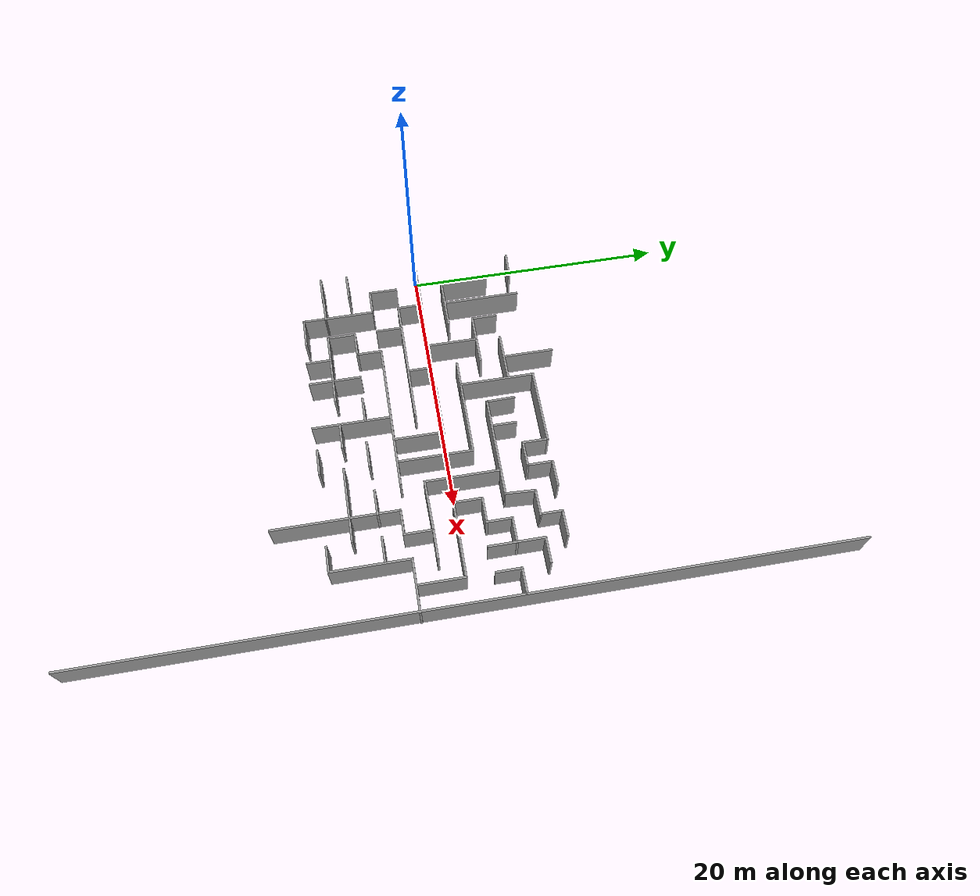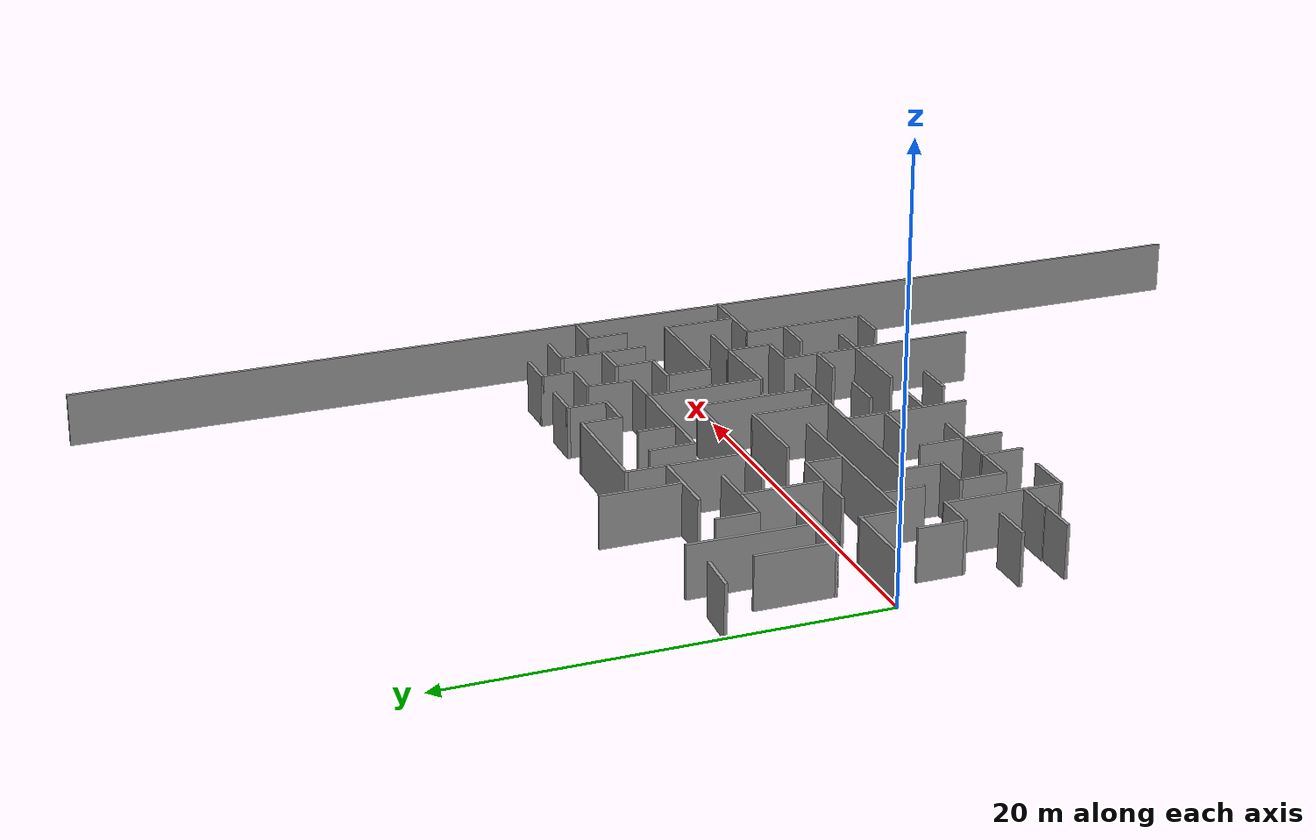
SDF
<sdf version="1.7">
 <model name="maze4">
  <pose>-0.019787 0.082438 0 0 -0 0</pose>
  <link name="Wall_1">
   <collision name="Wall_1_Collision">
    <geometry><box><size>56.75 0.15 2.5</size></box></geometry>
    <pose>0 0 1.25 0 -0 0</pose>
   </collision>
   <visual name="Wall_1_Visual">
    <pose>0 0 1.25 0 -0 0</pose>
    <geometry><box><size>56.75 0.15 2.5</size></box></geometry>
    <material>
     <script><uri>file://media/materials/scripts/gazebo.material</uri><name>Gazebo/Grey</name></script>
     <ambient>1 1 1 1</ambient>
    </material>
    <meta><layer>0</layer></meta>
   </visual>
   <pose>28.2783 0.019671 0 0 -0 -1.5708</pose>
  </link>
  <link name="Wall_287">
   <collision name="Wall_287_Collision">
    <geometry><box><size>2 0.15 2.5</size></box></geometry>
    <pose>0 0 1.25 0 -0 0</pose>
   </collision>
   <visual name="Wall_287_Visual">
    <pose>0 0 1.25 0 -0 0</pose>
    <geometry><box><size>2 0.15 2.5</size></box></geometry>
    <material>
     <script><uri>file://media/materials/scripts/gazebo.material</uri><name>Gazebo/Grey</name></script>
     <ambient>1 1 1 1</ambient>
    </material>
    <meta><layer>0</layer></meta>
   </visual>
   <pose>0.958409 -5.65223 0 0 -0 0</pose>
  </link>
  <link name="Wall_299">
   <collision name="Wall_299_Collision">
    <geometry><box><size>2 0.15 2.5</size></box></geometry>
    <pose>0 0 1.25 0 -0 0</pose>
   </collision>
   <visual name="Wall_299_Visual">
    <pose>0 0 1.25 0 -0 0</pose>
    <geometry><box><size>2 0.15 2.5</size></box></geometry>
    <material>
     <script><uri>file://media/materials/scripts/gazebo.material</uri><name>Gazebo/Grey</name></script>
     <ambient>1 1 1 1</ambient>
    </material>
    <meta><layer>0</layer></meta>
   </visual>
   <pose>0.929166 -7.7295 0 0 -0 3.14159</pose>
  </link>
  <link name="Wall_301">
   <collision name="Wall_301_Collision">
    <geometry><box><size>2 0.15 2.5</size></box></geometry>
    <pose>0 0 1.25 0 -0 0</pose>
   </collision>
   <visual name="Wall_301_Visual">
    <pose>0 0 1.25 0 -0 0</pose>
    <geometry><box><size>2 0.15 2.5</size></box></geometry>
    <material>
     <script><uri>file://media/materials/scripts/gazebo.material</uri><name>Gazebo/Grey</name></script>
     <ambient>1 1 1 1</ambient>
    </material>
    <meta><layer>0</layer></meta>
   </visual>
   <pose>2.80371 -7.68079 0 0 -0 0</pose>
  </link>
  <link name="Wall_302">
   <collision name="Wall_302_Collision">
    <geometry><box><size>3.87206 0.15 2.5</size></box></geometry>
    <pose>0 0 1.25 0 -0 0</pose>
   </collision>
   <visual name="Wall_302_Visual">
    <pose>0 0 1.25 0 -0 0</pose>
    <geometry><box><size>3.87206 0.15 2.5</size></box></geometry>
    <material>
     <script><uri>file://media/materials/scripts/gazebo.material</uri><name>Gazebo/Grey</name></script>
     <ambient>1 1 1 1</ambient>
    </material>
    <meta><layer>0</layer></meta>
   </visual>
   <pose>3.72576 -5.81977 0 0 -0 1.57238</pose>
  </link>
  <link name="Wall_303">
   <collision name="Wall_303_Collision">
    <geometry><box><size>2 0.15 2.5</size></box></geometry>
    <pose>0 0 1.25 0 -0 0</pose>
   </collision>
   <visual name="Wall_303_Visual">
    <pose>0 0 1.25 0 -0 0</pose>
    <geometry><box><size>2 0.15 2.5</size></box></geometry>
    <material>
     <script><uri>file://media/materials/scripts/gazebo.material</uri><name>Gazebo/Grey</name></script>
     <ambient>1 1 1 1</ambient>
    </material>
    <meta><layer>0</layer></meta>
   </visual>
   <pose>2.79782 -3.95874 0 0 -0 3.14159</pose>
  </link>
  <link name="Wall_304">
   <collision name="Wall_304_Collision">
    <geometry><box><size>2.25 0.15 2.5</size></box></geometry>
    <pose>0 0 1.25 0 -0 0</pose>
   </collision>
   <visual name="Wall_304_Visual">
    <pose>0 0 1.25 0 -0 0</pose>
    <geometry><box><size>2.25 0.15 2.5</size></box></geometry>
    <material>
     <script><uri>file://media/materials/scripts/gazebo.material</uri><name>Gazebo/Grey</name></script>
     <ambient>1 1 1 1</ambient>
    </material>
    <meta><layer>0</layer></meta>
   </visual>
   <pose>1.87282 -2.90874 0 0 -0 1.5708</pose>
  </link>
  <link name="Wall_306">
   <collision name="Wall_306_Collision">
    <geometry><box><size>1.87795 0.15 2.5</size></box></geometry>
    <pose>0 0 1.25 0 -0 0</pose>
   </collision>
   <visual name="Wall_306_Visual">
    <pose>0 0 1.25 0 -0 0</pose>
    <geometry><box><size>1.87795 0.15 2.5</size></box></geometry>
    <material>
     <script><uri>file://media/materials/scripts/gazebo.material</uri><name>Gazebo/Grey</name></script>
     <ambient>1 1 1 1</ambient>
    </material>
    <meta><layer>0</layer></meta>
   </visual>
   <pose>3.72576 -8.54476 0 0 -0 -1.5742</pose>
  </link>
  <link name="Wall_307">
   <collision name="Wall_307_Collision">
    <geometry><box><size>2.25 0.15 2.5</size></box></geometry>
    <pose>0 0 1.25 0 -0 0</pose>
   </collision>
   <visual name="Wall_307_Visual">
    <pose>0 0 1.25 0 -0 0</pose>
    <geometry><box><size>2.25 0.15 2.5</size></box></geometry>
    <material>
     <script><uri>file://media/materials/scripts/gazebo.material</uri><name>Gazebo/Grey</name></script>
     <ambient>1 1 1 1</ambient>
    </material>
    <meta><layer>0</layer></meta>
   </visual>
   <pose>4.77282 -9.40874 0 0 -0 0</pose>
  </link>
  <link name="Wall_385">
   <collision name="Wall_385_Collision">
    <geometry><box><size>2 0.15 2.5</size></box></geometry>
    <pose>0 0 1.25 0 -0 0</pose>
   </collision>
   <visual name="Wall_385_Visual">
    <pose>0 0 1.25 0 -0 0</pose>
    <geometry><box><size>2 0.15 2.5</size></box></geometry>
    <material>
     <script><uri>file://media/materials/scripts/gazebo.material</uri><name>Gazebo/Grey</name></script>
     <ambient>1 1 1 1</ambient>
    </material>
    <meta><layer>0</layer></meta>
   </visual>
   <pose>15.9853 -5.76384 0 0 -0 3.14159</pose>
  </link>
  <link name="Wall_387">
   <collision name="Wall_387_Collision">
    <geometry><box><size>2 0.15 2.5</size></box></geometry>
    <pose>0 0 1.25 0 -0 0</pose>
   </collision>
   <visual name="Wall_387_Visual">
    <pose>0 0 1.25 0 -0 0</pose>
    <geometry><box><size>2 0.15 2.5</size></box></geometry>
    <material>
     <script><uri>file://media/materials/scripts/gazebo.material</uri><name>Gazebo/Grey</name></script>
     <ambient>1 1 1 1</ambient>
    </material>
    <meta><layer>0</layer></meta>
   </visual>
   <pose>16.0256 -9.44059 0 0 -0 0</pose>
  </link>
  <link name="Wall_433">
   <collision name="Wall_433_Collision">
    <geometry><box><size>2 0.15 2.5</size></box></geometry>
    <pose>0 0 1.25 0 -0 0</pose>
   </collision>
   <visual name="Wall_433_Visual">
    <pose>0 0 1.25 0 -0 0</pose>
    <geometry><box><size>2 0.15 2.5</size></box></geometry>
    <material>
     <script><uri>file://media/materials/scripts/gazebo.material</uri><name>Gazebo/Grey</name></script>
     <ambient>1 1 1 1</ambient>
    </material>
    <meta><layer>0</layer></meta>
   </visual>
   <pose>23.5585 -9.5089 0 0 -0 0</pose>
  </link>
  <link name="Wall_434">
   <collision name="Wall_434_Collision">
    <geometry><box><size>6 0.15 2.5</size></box></geometry>
    <pose>0 0 1.25 0 -0 0</pose>
   </collision>
   <visual name="Wall_434_Visual">
    <pose>0 0 1.25 0 -0 0</pose>
    <geometry><box><size>6 0.15 2.5</size></box></geometry>
    <material>
     <script><uri>file://media/materials/scripts/gazebo.material</uri><name>Gazebo/Grey</name></script>
     <ambient>1 1 1 1</ambient>
    </material>
    <meta><layer>0</layer></meta>
   </visual>
   <pose>24.4835 -6.5839 0 0 -0 1.5708</pose>
  </link>
  <link name="Wall_435">
   <collision name="Wall_435_Collision">
    <geometry><box><size>4 0.15 2.5</size></box></geometry>
    <pose>0 0 1.25 0 -0 0</pose>
   </collision>
   <visual name="Wall_435_Visual">
    <pose>0 0 1.25 0 -0 0</pose>
    <geometry><box><size>4 0.15 2.5</size></box></geometry>
    <material>
     <script><uri>file://media/materials/scripts/gazebo.material</uri><name>Gazebo/Grey</name></script>
     <ambient>1 1 1 1</ambient>
    </material>
    <meta><layer>0</layer></meta>
   </visual>
   <pose>26.4085 -3.6589 0 0 -0 0</pose>
  </link>
  <link name="Wall_437">
   <collision name="Wall_437_Collision">
    <geometry><box><size>2 0.15 2.5</size></box></geometry>
    <pose>0 0 1.25 0 -0 0</pose>
   </collision>
   <visual name="Wall_437_Visual">
    <pose>0 0 1.25 0 -0 0</pose>
    <geometry><box><size>2 0.15 2.5</size></box></geometry>
    <material>
     <script><uri>file://media/materials/scripts/gazebo.material</uri><name>Gazebo/Grey</name></script>
     <ambient>1 1 1 1</ambient>
    </material>
    <meta><layer>0</layer></meta>
   </visual>
   <pose>23.4649 -5.55717 0 0 -0 0</pose>
  </link>
  <link name="Wall_440">
   <collision name="Wall_440_Collision">
    <geometry><box><size>9.5 0.15 2.5</size></box></geometry>
    <pose>0 0 1.25 0 -0 0</pose>
   </collision>
   <visual name="Wall_440_Visual">
    <pose>0 0 1.25 0 -0 0</pose>
    <geometry><box><size>9.5 0.15 2.5</size></box></geometry>
    <material>
     <script><uri>file://media/materials/scripts/gazebo.material</uri><name>Gazebo/Grey</name></script>
     <ambient>1 1 1 1</ambient>
    </material>
    <meta><layer>0</layer></meta>
   </visual>
   <pose>20.7619 -8.67052 0 0 -0 1.5708</pose>
  </link>
  <link name="Wall_441">
   <collision name="Wall_441_Collision">
    <geometry><box><size>2 0.15 2.5</size></box></geometry>
    <pose>0 0 1.25 0 -0 0</pose>
   </collision>
   <visual name="Wall_441_Visual">
    <pose>0 0 1.25 0 -0 0</pose>
    <geometry><box><size>2 0.15 2.5</size></box></geometry>
    <material>
     <script><uri>file://media/materials/scripts/gazebo.material</uri><name>Gazebo/Grey</name></script>
     <ambient>1 1 1 1</ambient>
    </material>
    <meta><layer>0</layer></meta>
   </visual>
   <pose>21.6869 -3.99552 0 0 -0 0</pose>
  </link>
  <link name="Wall_442">
   <collision name="Wall_442_Collision">
    <geometry><box><size>2.25 0.15 2.5</size></box></geometry>
    <pose>0 0 1.25 0 -0 0</pose>
   </collision>
   <visual name="Wall_442_Visual">
    <pose>0 0 1.25 0 -0 0</pose>
    <geometry><box><size>2.25 0.15 2.5</size></box></geometry>
    <material>
     <script><uri>file://media/materials/scripts/gazebo.material</uri><name>Gazebo/Grey</name></script>
     <ambient>1 1 1 1</ambient>
    </material>
    <meta><layer>0</layer></meta>
   </visual>
   <pose>22.6119 -2.94552 0 0 -0 1.5708</pose>
  </link>
  <link name="Wall_443">
   <collision name="Wall_443_Collision">
    <geometry><box><size>3.90209 0.15 2.5</size></box></geometry>
    <pose>0 0 1.25 0 -0 0</pose>
   </collision>
   <visual name="Wall_443_Visual">
    <pose>0 0 1.25 0 -0 0</pose>
    <geometry><box><size>3.90209 0.15 2.5</size></box></geometry>
    <material>
     <script><uri>file://media/materials/scripts/gazebo.material</uri><name>Gazebo/Grey</name></script>
     <ambient>1 1 1 1</ambient>
    </material>
    <meta><layer>0</layer></meta>
   </visual>
   <pose>20.7364 -1.9385 0 0 -0 -3.11868</pose>
  </link>
  <link name="Wall_444">
   <collision name="Wall_444_Collision">
    <geometry><box><size>5.75 0.15 2.5</size></box></geometry>
    <pose>0 0 1.25 0 -0 0</pose>
   </collision>
   <visual name="Wall_444_Visual">
    <pose>0 0 1.25 0 -0 0</pose>
    <geometry><box><size>5.75 0.15 2.5</size></box></geometry>
    <material>
     <script><uri>file://media/materials/scripts/gazebo.material</uri><name>Gazebo/Grey</name></script>
     <ambient>1 1 1 1</ambient>
    </material>
    <meta><layer>0</layer></meta>
   </visual>
   <pose>18.8608 0.818517 0 0 -0 1.5708</pose>
  </link>
  <link name="Wall_445">
   <collision name="Wall_445_Collision">
    <geometry><box><size>2 0.15 2.5</size></box></geometry>
    <pose>0 0 1.25 0 -0 0</pose>
   </collision>
   <visual name="Wall_445_Visual">
    <pose>0 0 1.25 0 -0 0</pose>
    <geometry><box><size>2 0.15 2.5</size></box></geometry>
    <material>
     <script><uri>file://media/materials/scripts/gazebo.material</uri><name>Gazebo/Grey</name></script>
     <ambient>1 1 1 1</ambient>
    </material>
    <meta><layer>0</layer></meta>
   </visual>
   <pose>19.8263 3.61852 0 0 -0 0</pose>
  </link>
  <link name="Wall_446">
   <collision name="Wall_446_Collision">
    <geometry><box><size>2.33876 0.15 2.5</size></box></geometry>
    <pose>0 0 1.25 0 -0 0</pose>
   </collision>
   <visual name="Wall_446_Visual">
    <pose>0 0 1.25 0 -0 0</pose>
    <geometry><box><size>2.33876 0.15 2.5</size></box></geometry>
    <material>
     <script><uri>file://media/materials/scripts/gazebo.material</uri><name>Gazebo/Grey</name></script>
     <ambient>1 1 1 1</ambient>
    </material>
    <meta><layer>0</layer></meta>
   </visual>
   <pose>20.8066 4.7115 0 0 -0 1.52022</pose>
  </link>
  <link name="Wall_447">
   <collision name="Wall_447_Collision">
    <geometry><box><size>2 0.15 2.5</size></box></geometry>
    <pose>0 0 1.25 0 -0 0</pose>
   </collision>
   <visual name="Wall_447_Visual">
    <pose>0 0 1.25 0 -0 0</pose>
    <geometry><box><size>2 0.15 2.5</size></box></geometry>
    <material>
     <script><uri>file://media/materials/scripts/gazebo.material</uri><name>Gazebo/Grey</name></script>
     <ambient>1 1 1 1</ambient>
    </material>
    <meta><layer>0</layer></meta>
   </visual>
   <pose>21.7869 5.80448 0 0 -0 0</pose>
  </link>
  <link name="Wall_448">
   <collision name="Wall_448_Collision">
    <geometry><box><size>1.75 0.15 2.5</size></box></geometry>
    <pose>0 0 1.25 0 -0 0</pose>
   </collision>
   <visual name="Wall_448_Visual">
    <pose>0 0 1.25 0 -0 0</pose>
    <geometry><box><size>1.75 0.15 2.5</size></box></geometry>
    <material>
     <script><uri>file://media/materials/scripts/gazebo.material</uri><name>Gazebo/Grey</name></script>
     <ambient>1 1 1 1</ambient>
    </material>
    <meta><layer>0</layer></meta>
   </visual>
   <pose>22.7119 6.60448 0 0 -0 1.5708</pose>
  </link>
  <link name="Wall_449">
   <collision name="Wall_449_Collision">
    <geometry><box><size>2 0.15 2.5</size></box></geometry>
    <pose>0 0 1.25 0 -0 0</pose>
   </collision>
   <visual name="Wall_449_Visual">
    <pose>0 0 1.25 0 -0 0</pose>
    <geometry><box><size>2 0.15 2.5</size></box></geometry>
    <material>
     <script><uri>file://media/materials/scripts/gazebo.material</uri><name>Gazebo/Grey</name></script>
     <ambient>1 1 1 1</ambient>
    </material>
    <meta><layer>0</layer></meta>
   </visual>
   <pose>23.6369 7.40448 0 0 -0 0</pose>
  </link>
  <link name="Wall_455">
   <collision name="Wall_455_Collision">
    <geometry><box><size>5.75 0.15 2.5</size></box></geometry>
    <pose>0 0 1.25 0 -0 0</pose>
   </collision>
   <visual name="Wall_455_Visual">
    <pose>0 0 1.25 0 -0 0</pose>
    <geometry><box><size>5.75 0.15 2.5</size></box></geometry>
    <material>
     <script><uri>file://media/materials/scripts/gazebo.material</uri><name>Gazebo/Grey</name></script>
     <ambient>1 1 1 1</ambient>
    </material>
    <meta><layer>0</layer></meta>
   </visual>
   <pose>19.7253 -7.66264 0 0 -0 0</pose>
  </link>
  <link name="Wall_457">
   <collision name="Wall_457_Collision">
    <geometry><box><size>2 0.15 2.5</size></box></geometry>
    <pose>0 0 1.25 0 -0 0</pose>
   </collision>
   <visual name="Wall_457_Visual">
    <pose>0 0 1.25 0 -0 0</pose>
    <geometry><box><size>2 0.15 2.5</size></box></geometry>
    <material>
     <script><uri>file://media/materials/scripts/gazebo.material</uri><name>Gazebo/Grey</name></script>
     <ambient>1 1 1 1</ambient>
    </material>
    <meta><layer>0</layer></meta>
   </visual>
   <pose>19.8837 -5.65075 0 0 -0 3.14159</pose>
  </link>
  <link name="Wall_459">
   <collision name="Wall_459_Collision">
    <geometry><box><size>11.5 0.15 2.5</size></box></geometry>
    <pose>0 0 1.25 0 -0 0</pose>
   </collision>
   <visual name="Wall_459_Visual">
    <pose>0 0 1.25 0 -0 0</pose>
    <geometry><box><size>11.5 0.15 2.5</size></box></geometry>
    <material>
     <script><uri>file://media/materials/scripts/gazebo.material</uri><name>Gazebo/Grey</name></script>
     <ambient>1 1 1 1</ambient>
    </material>
    <meta><layer>0</layer></meta>
   </visual>
   <pose>13.0751 -3.73244 0 0 -0 3.14159</pose>
  </link>
  <link name="Wall_460">
   <collision name="Wall_460_Collision">
    <geometry><box><size>2 0.15 2.5</size></box></geometry>
    <pose>0 0 1.25 0 -0 0</pose>
   </collision>
   <visual name="Wall_460_Visual">
    <pose>0 0 1.25 0 -0 0</pose>
    <geometry><box><size>2 0.15 2.5</size></box></geometry>
    <material>
     <script><uri>file://media/materials/scripts/gazebo.material</uri><name>Gazebo/Grey</name></script>
     <ambient>1 1 1 1</ambient>
    </material>
    <meta><layer>0</layer></meta>
   </visual>
   <pose>7.40006 -4.65744 0 0 -0 -1.5708</pose>
  </link>
  <link name="Wall_461">
   <collision name="Wall_461_Collision">
    <geometry><box><size>2 0.15 2.5</size></box></geometry>
    <pose>0 0 1.25 0 -0 0</pose>
   </collision>
   <visual name="Wall_461_Visual">
    <pose>0 0 1.25 0 -0 0</pose>
    <geometry><box><size>2 0.15 2.5</size></box></geometry>
    <material>
     <script><uri>file://media/materials/scripts/gazebo.material</uri><name>Gazebo/Grey</name></script>
     <ambient>1 1 1 1</ambient>
    </material>
    <meta><layer>0</layer></meta>
   </visual>
   <pose>6.47506 -5.58244 0 0 -0 3.14159</pose>
  </link>
  <link name="Wall_462">
   <collision name="Wall_462_Collision">
    <geometry><box><size>2.25 0.15 2.5</size></box></geometry>
    <pose>0 0 1.25 0 -0 0</pose>
   </collision>
   <visual name="Wall_462_Visual">
    <pose>0 0 1.25 0 -0 0</pose>
    <geometry><box><size>2.25 0.15 2.5</size></box></geometry>
    <material>
     <script><uri>file://media/materials/scripts/gazebo.material</uri><name>Gazebo/Grey</name></script>
     <ambient>1 1 1 1</ambient>
    </material>
    <meta><layer>0</layer></meta>
   </visual>
   <pose>5.55006 -6.63244 0 0 -0 -1.5708</pose>
  </link>
  <link name="Wall_463">
   <collision name="Wall_463_Collision">
    <geometry><box><size>5.75 0.15 2.5</size></box></geometry>
    <pose>0 0 1.25 0 -0 0</pose>
   </collision>
   <visual name="Wall_463_Visual">
    <pose>0 0 1.25 0 -0 0</pose>
    <geometry><box><size>5.75 0.15 2.5</size></box></geometry>
    <material>
     <script><uri>file://media/materials/scripts/gazebo.material</uri><name>Gazebo/Grey</name></script>
     <ambient>1 1 1 1</ambient>
    </material>
    <meta><layer>0</layer></meta>
   </visual>
   <pose>8.35006 -7.68244 0 0 -0 0</pose>
  </link>
  <link name="Wall_465">
   <collision name="Wall_465_Collision">
    <geometry><box><size>4 0.15 2.5</size></box></geometry>
    <pose>0 0 1.25 0 -0 0</pose>
   </collision>
   <visual name="Wall_465_Visual">
    <pose>0 0 1.25 0 -0 0</pose>
    <geometry><box><size>4 0.15 2.5</size></box></geometry>
    <material>
     <script><uri>file://media/materials/scripts/gazebo.material</uri><name>Gazebo/Grey</name></script>
     <ambient>1 1 1 1</ambient>
    </material>
    <meta><layer>0</layer></meta>
   </visual>
   <pose>9.43923 -7.52896 0 0 -0 -1.5708</pose>
  </link>
  <link name="Wall_467">
   <collision name="Wall_467_Collision">
    <geometry><box><size>2 0.15 2.5</size></box></geometry>
    <pose>0 0 1.25 0 -0 0</pose>
   </collision>
   <visual name="Wall_467_Visual">
    <pose>0 0 1.25 0 -0 0</pose>
    <geometry><box><size>2 0.15 2.5</size></box></geometry>
    <material>
     <script><uri>file://media/materials/scripts/gazebo.material</uri><name>Gazebo/Grey</name></script>
     <ambient>1 1 1 1</ambient>
    </material>
    <meta><layer>0</layer></meta>
   </visual>
   <pose>7.5677 -8.58764 0 0 -0 -1.5708</pose>
  </link>
  <link name="Wall_469">
   <collision name="Wall_469_Collision">
    <geometry><box><size>6 0.15 2.5</size></box></geometry>
    <pose>0 0 1.25 0 -0 0</pose>
   </collision>
   <visual name="Wall_469_Visual">
    <pose>0 0 1.25 0 -0 0</pose>
    <geometry><box><size>6 0.15 2.5</size></box></geometry>
    <material>
     <script><uri>file://media/materials/scripts/gazebo.material</uri><name>Gazebo/Grey</name></script>
     <ambient>1 1 1 1</ambient>
    </material>
    <meta><layer>0</layer></meta>
   </visual>
   <pose>13.2291 -6.65744 0 0 -0 -1.5708</pose>
  </link>
  <link name="Wall_471">
   <collision name="Wall_471_Collision">
    <geometry><box><size>2 0.15 2.5</size></box></geometry>
    <pose>0 0 1.25 0 -0 0</pose>
   </collision>
   <visual name="Wall_471_Visual">
    <pose>0 0 1.25 0 -0 0</pose>
    <geometry><box><size>2 0.15 2.5</size></box></geometry>
    <material>
     <script><uri>file://media/materials/scripts/gazebo.material</uri><name>Gazebo/Grey</name></script>
     <ambient>1 1 1 1</ambient>
    </material>
    <meta><layer>0</layer></meta>
   </visual>
   <pose>12.2825 -5.65075 0 0 -0 0</pose>
  </link>
  <link name="Wall_473">
   <collision name="Wall_473_Collision">
    <geometry><box><size>2 0.15 2.5</size></box></geometry>
    <pose>0 0 1.25 0 -0 0</pose>
   </collision>
   <visual name="Wall_473_Visual">
    <pose>0 0 1.25 0 -0 0</pose>
    <geometry><box><size>2 0.15 2.5</size></box></geometry>
    <material>
     <script><uri>file://media/materials/scripts/gazebo.material</uri><name>Gazebo/Grey</name></script>
     <ambient>1 1 1 1</ambient>
    </material>
    <meta><layer>0</layer></meta>
   </visual>
   <pose>14.2009 -7.56906 0 0 -0 0</pose>
  </link>
  <link name="Wall_572">
   <collision name="Wall_572_Collision">
    <geometry><box><size>2 0.15 2.5</size></box></geometry>
    <pose>0 0 1.25 0 -0 0</pose>
   </collision>
   <visual name="Wall_572_Visual">
    <pose>0 0 1.25 0 -0 0</pose>
    <geometry><box><size>2 0.15 2.5</size></box></geometry>
    <material>
     <script><uri>file://media/materials/scripts/gazebo.material</uri><name>Gazebo/Grey</name></script>
     <ambient>1 1 1 1</ambient>
    </material>
    <meta><layer>0</layer></meta>
   </visual>
   <pose>25.4103 5.82275 0 0 -0 3.14159</pose>
  </link>
  <link name="Wall_573">
   <collision name="Wall_573_Collision">
    <geometry><box><size>4.25 0.15 2.5</size></box></geometry>
    <pose>0 0 1.25 0 -0 0</pose>
   </collision>
   <visual name="Wall_573_Visual">
    <pose>0 0 1.25 0 -0 0</pose>
    <geometry><box><size>4.25 0.15 2.5</size></box></geometry>
    <material>
     <script><uri>file://media/materials/scripts/gazebo.material</uri><name>Gazebo/Grey</name></script>
     <ambient>1 1 1 1</ambient>
    </material>
    <meta><layer>0</layer></meta>
   </visual>
   <pose>24.4853 3.77275 0 0 -0 -1.5708</pose>
  </link>
  <link name="Wall_575">
   <collision name="Wall_575_Collision">
    <geometry><box><size>2 0.15 2.5</size></box></geometry>
    <pose>0 0 1.25 0 -0 0</pose>
   </collision>
   <visual name="Wall_575_Visual">
    <pose>0 0 1.25 0 -0 0</pose>
    <geometry><box><size>2 0.15 2.5</size></box></geometry>
    <material>
     <script><uri>file://media/materials/scripts/gazebo.material</uri><name>Gazebo/Grey</name></script>
     <ambient>1 1 1 1</ambient>
    </material>
    <meta><layer>0</layer></meta>
   </visual>
   <pose>26.4162 2.84069 0 0 -0 1.5708</pose>
  </link>
  <link name="Wall_576">
   <collision name="Wall_576_Collision">
    <geometry><box><size>2 0.15 2.5</size></box></geometry>
    <pose>0 0 1.25 0 -0 0</pose>
   </collision>
   <visual name="Wall_576_Visual">
    <pose>0 0 1.25 0 -0 0</pose>
    <geometry><box><size>2 0.15 2.5</size></box></geometry>
    <material>
     <script><uri>file://media/materials/scripts/gazebo.material</uri><name>Gazebo/Grey</name></script>
     <ambient>1 1 1 1</ambient>
    </material>
    <meta><layer>0</layer></meta>
   </visual>
   <pose>27.3412 3.76569 0 0 -0 0</pose>
  </link>
  <link name="Wall_578">
   <collision name="Wall_578_Collision">
    <geometry><box><size>2 0.15 2.5</size></box></geometry>
    <pose>0 0 1.25 0 -0 0</pose>
   </collision>
   <visual name="Wall_578_Visual">
    <pose>0 0 1.25 0 -0 0</pose>
    <geometry><box><size>2 0.15 2.5</size></box></geometry>
    <material>
     <script><uri>file://media/materials/scripts/gazebo.material</uri><name>Gazebo/Grey</name></script>
     <ambient>1 1 1 1</ambient>
    </material>
    <meta><layer>0</layer></meta>
   </visual>
   <pose>23.5898 3.77665 0 0 -0 3.14159</pose>
  </link>
  <link name="Wall_579">
   <collision name="Wall_579_Collision">
    <geometry><box><size>2 0.15 2.5</size></box></geometry>
    <pose>0 0 1.25 0 -0 0</pose>
   </collision>
   <visual name="Wall_579_Visual">
    <pose>0 0 1.25 0 -0 0</pose>
    <geometry><box><size>2 0.15 2.5</size></box></geometry>
    <material>
     <script><uri>file://media/materials/scripts/gazebo.material</uri><name>Gazebo/Grey</name></script>
     <ambient>1 1 1 1</ambient>
    </material>
    <meta><layer>0</layer></meta>
   </visual>
   <pose>22.6648 2.85165 0 0 -0 -1.5708</pose>
  </link>
  <link name="Wall_580">
   <collision name="Wall_580_Collision">
    <geometry><box><size>2 0.15 2.5</size></box></geometry>
    <pose>0 0 1.25 0 -0 0</pose>
   </collision>
   <visual name="Wall_580_Visual">
    <pose>0 0 1.25 0 -0 0</pose>
    <geometry><box><size>2 0.15 2.5</size></box></geometry>
    <material>
     <script><uri>file://media/materials/scripts/gazebo.material</uri><name>Gazebo/Grey</name></script>
     <ambient>1 1 1 1</ambient>
    </material>
    <meta><layer>0</layer></meta>
   </visual>
   <pose>21.7398 1.92665 0 0 -0 3.14159</pose>
  </link>
  <link name="Wall_581">
   <collision name="Wall_581_Collision">
    <geometry><box><size>2.25 0.15 2.5</size></box></geometry>
    <pose>0 0 1.25 0 -0 0</pose>
   </collision>
   <visual name="Wall_581_Visual">
    <pose>0 0 1.25 0 -0 0</pose>
    <geometry><box><size>2.25 0.15 2.5</size></box></geometry>
    <material>
     <script><uri>file://media/materials/scripts/gazebo.material</uri><name>Gazebo/Grey</name></script>
     <ambient>1 1 1 1</ambient>
    </material>
    <meta><layer>0</layer></meta>
   </visual>
   <pose>20.8148 0.87665 0 0 -0 -1.5708</pose>
  </link>
  <link name="Wall_582">
   <collision name="Wall_582_Collision">
    <geometry><box><size>5.75 0.15 2.5</size></box></geometry>
    <pose>0 0 1.25 0 -0 0</pose>
   </collision>
   <visual name="Wall_582_Visual">
    <pose>0 0 1.25 0 -0 0</pose>
    <geometry><box><size>5.75 0.15 2.5</size></box></geometry>
    <material>
     <script><uri>file://media/materials/scripts/gazebo.material</uri><name>Gazebo/Grey</name></script>
     <ambient>1 1 1 1</ambient>
    </material>
    <meta><layer>0</layer></meta>
   </visual>
   <pose>23.6148 -0.17335 0 0 -0 0</pose>
  </link>
  <link name="Wall_583">
   <collision name="Wall_583_Collision">
    <geometry><box><size>3.5 0.15 2.5</size></box></geometry>
    <pose>0 0 1.25 0 -0 0</pose>
   </collision>
   <visual name="Wall_583_Visual">
    <pose>0 0 1.25 0 -0 0</pose>
    <geometry><box><size>3.5 0.15 2.5</size></box></geometry>
    <material>
     <script><uri>file://media/materials/scripts/gazebo.material</uri><name>Gazebo/Grey</name></script>
     <ambient>1 1 1 1</ambient>
    </material>
    <meta><layer>0</layer></meta>
   </visual>
   <pose>26.4148 -1.84835 0 0 -0 -1.5708</pose>
  </link>
  <link name="Wall_585">
   <collision name="Wall_585_Collision">
    <geometry><box><size>2.25 0.15 2.5</size></box></geometry>
    <pose>0 0 1.25 0 -0 0</pose>
   </collision>
   <visual name="Wall_585_Visual">
    <pose>0 0 1.25 0 -0 0</pose>
    <geometry><box><size>2.25 0.15 2.5</size></box></geometry>
    <material>
     <script><uri>file://media/materials/scripts/gazebo.material</uri><name>Gazebo/Grey</name></script>
     <ambient>1 1 1 1</ambient>
    </material>
    <meta><layer>0</layer></meta>
   </visual>
   <pose>23.6619 -1.89552 0 0 -0 0</pose>
  </link>
  <link name="Wall_596">
   <collision name="Wall_596_Collision">
    <geometry><box><size>2 0.15 2.5</size></box></geometry>
    <pose>0 0 1.25 0 -0 0</pose>
   </collision>
   <visual name="Wall_596_Visual">
    <pose>0 0 1.25 0 -0 0</pose>
    <geometry><box><size>2 0.15 2.5</size></box></geometry>
    <material>
     <script><uri>file://media/materials/scripts/gazebo.material</uri><name>Gazebo/Grey</name></script>
     <ambient>1 1 1 1</ambient>
    </material>
    <meta><layer>0</layer></meta>
   </visual>
   <pose>19.7355 7.49184 0 0 -0 0</pose>
  </link>
  <link name="Wall_598">
   <collision name="Wall_598_Collision">
    <geometry><box><size>2 0.15 2.5</size></box></geometry>
    <pose>0 0 1.25 0 -0 0</pose>
   </collision>
   <visual name="Wall_598_Visual">
    <pose>0 0 1.25 0 -0 0</pose>
    <geometry><box><size>2 0.15 2.5</size></box></geometry>
    <material>
     <script><uri>file://media/materials/scripts/gazebo.material</uri><name>Gazebo/Grey</name></script>
     <ambient>1 1 1 1</ambient>
    </material>
    <meta><layer>0</layer></meta>
   </visual>
   <pose>18.8105 6.56684 0 0 -0 -1.5708</pose>
  </link>
  <link name="Wall_599">
   <collision name="Wall_599_Collision">
    <geometry><box><size>2 0.15 2.5</size></box></geometry>
    <pose>0 0 1.25 0 -0 0</pose>
   </collision>
   <visual name="Wall_599_Visual">
    <pose>0 0 1.25 0 -0 0</pose>
    <geometry><box><size>2 0.15 2.5</size></box></geometry>
    <material>
     <script><uri>file://media/materials/scripts/gazebo.material</uri><name>Gazebo/Grey</name></script>
     <ambient>1 1 1 1</ambient>
    </material>
    <meta><layer>0</layer></meta>
   </visual>
   <pose>17.8855 5.64184 0 0 -0 3.14159</pose>
  </link>
  <link name="Wall_600">
   <collision name="Wall_600_Collision">
    <geometry><box><size>2 0.15 2.5</size></box></geometry>
    <pose>0 0 1.25 0 -0 0</pose>
   </collision>
   <visual name="Wall_600_Visual">
    <pose>0 0 1.25 0 -0 0</pose>
    <geometry><box><size>2 0.15 2.5</size></box></geometry>
    <material>
     <script><uri>file://media/materials/scripts/gazebo.material</uri><name>Gazebo/Grey</name></script>
     <ambient>1 1 1 1</ambient>
    </material>
    <meta><layer>0</layer></meta>
   </visual>
   <pose>16.9605 6.56684 0 0 -0 1.5708</pose>
  </link>
  <link name="Wall_601">
   <collision name="Wall_601_Collision">
    <geometry><box><size>5.75 0.15 2.5</size></box></geometry>
    <pose>0 0 1.25 0 -0 0</pose>
   </collision>
   <visual name="Wall_601_Visual">
    <pose>0 0 1.25 0 -0 0</pose>
    <geometry><box><size>5.75 0.15 2.5</size></box></geometry>
    <material>
     <script><uri>file://media/materials/scripts/gazebo.material</uri><name>Gazebo/Grey</name></script>
     <ambient>1 1 1 1</ambient>
    </material>
    <meta><layer>0</layer></meta>
   </visual>
   <pose>14.1605 7.49184 0 0 -0 3.14159</pose>
  </link>
  <link name="Wall_602">
   <collision name="Wall_602_Collision">
    <geometry><box><size>5.75 0.15 2.5</size></box></geometry>
    <pose>0 0 1.25 0 -0 0</pose>
   </collision>
   <visual name="Wall_602_Visual">
    <pose>0 0 1.25 0 -0 0</pose>
    <geometry><box><size>5.75 0.15 2.5</size></box></geometry>
    <material>
     <script><uri>file://media/materials/scripts/gazebo.material</uri><name>Gazebo/Grey</name></script>
     <ambient>1 1 1 1</ambient>
    </material>
    <meta><layer>0</layer></meta>
   </visual>
   <pose>11.3605 4.69184 0 0 -0 -1.5708</pose>
  </link>
  <link name="Wall_603">
   <collision name="Wall_603_Collision">
    <geometry><box><size>2 0.15 2.5</size></box></geometry>
    <pose>0 0 1.25 0 -0 0</pose>
   </collision>
   <visual name="Wall_603_Visual">
    <pose>0 0 1.25 0 -0 0</pose>
    <geometry><box><size>2 0.15 2.5</size></box></geometry>
    <material>
     <script><uri>file://media/materials/scripts/gazebo.material</uri><name>Gazebo/Grey</name></script>
     <ambient>1 1 1 1</ambient>
    </material>
    <meta><layer>0</layer></meta>
   </visual>
   <pose>10.4355 1.89184 0 0 -0 3.14159</pose>
  </link>
  <link name="Wall_605">
   <collision name="Wall_605_Collision">
    <geometry><box><size>2.20994 0.15 2.5</size></box></geometry>
    <pose>0 0 1.25 0 -0 0</pose>
   </collision>
   <visual name="Wall_605_Visual">
    <pose>0 0 1.25 0 -0 0</pose>
    <geometry><box><size>2.20994 0.15 2.5</size></box></geometry>
    <material>
     <script><uri>file://media/materials/scripts/gazebo.material</uri><name>Gazebo/Grey</name></script>
     <ambient>1 1 1 1</ambient>
    </material>
    <meta><layer>0</layer></meta>
   </visual>
   <pose>13.1265 4.64829 0 0 -0 -1.55116</pose>
  </link>
  <link name="Wall_606">
   <collision name="Wall_606_Collision">
    <geometry><box><size>5.8641 0.15 2.5</size></box></geometry>
    <pose>0 0 1.25 0 -0 0</pose>
   </collision>
   <visual name="Wall_606_Visual">
    <pose>0 0 1.25 0 -0 0</pose>
    <geometry><box><size>5.8641 0.15 2.5</size></box></geometry>
    <material>
     <script><uri>file://media/materials/scripts/gazebo.material</uri><name>Gazebo/Grey</name></script>
     <ambient>1 1 1 1</ambient>
    </material>
    <meta><layer>0</layer></meta>
   </visual>
   <pose>16.0442 3.61852 0 0 -0 0</pose>
  </link>
  <link name="Wall_608">
   <collision name="Wall_608_Collision">
    <geometry><box><size>1.75 0.15 2.5</size></box></geometry>
    <pose>0 0 1.25 0 -0 0</pose>
   </collision>
   <visual name="Wall_608_Visual">
    <pose>0 0 1.25 0 -0 0</pose>
    <geometry><box><size>1.75 0.15 2.5</size></box></geometry>
    <material>
     <script><uri>file://media/materials/scripts/gazebo.material</uri><name>Gazebo/Grey</name></script>
     <ambient>1 1 1 1</ambient>
    </material>
    <meta><layer>0</layer></meta>
   </visual>
   <pose>15.21 4.6171 0 0 -0 1.5708</pose>
  </link>
  <link name="Wall_610">
   <collision name="Wall_610_Collision">
    <geometry><box><size>5.75 0.15 2.5</size></box></geometry>
    <pose>0 0 1.25 0 -0 0</pose>
   </collision>
   <visual name="Wall_610_Visual">
    <pose>0 0 1.25 0 -0 0</pose>
    <geometry><box><size>5.75 0.15 2.5</size></box></geometry>
    <material>
     <script><uri>file://media/materials/scripts/gazebo.material</uri><name>Gazebo/Grey</name></script>
     <ambient>1 1 1 1</ambient>
    </material>
    <meta><layer>0</layer></meta>
   </visual>
   <pose>14.1605 1.89184 0 0 -0 0</pose>
  </link>
  <link name="Wall_611">
   <collision name="Wall_611_Collision">
    <geometry><box><size>5.75 0.15 2.5</size></box></geometry>
    <pose>0 0 1.25 0 -0 0</pose>
   </collision>
   <visual name="Wall_611_Visual">
    <pose>0 0 1.25 0 -0 0</pose>
    <geometry><box><size>5.75 0.15 2.5</size></box></geometry>
    <material>
     <script><uri>file://media/materials/scripts/gazebo.material</uri><name>Gazebo/Grey</name></script>
     <ambient>1 1 1 1</ambient>
    </material>
    <meta><layer>0</layer></meta>
   </visual>
   <pose>16.9605 -0.908157 0 0 -0 -1.5708</pose>
  </link>
  <link name="Wall_613">
   <collision name="Wall_613_Collision">
    <geometry><box><size>3.75 0.15 2.5</size></box></geometry>
    <pose>0 0 1.25 0 -0 0</pose>
   </collision>
   <visual name="Wall_613_Visual">
    <pose>0 0 1.25 0 -0 0</pose>
    <geometry><box><size>3.75 0.15 2.5</size></box></geometry>
    <material>
     <script><uri>file://media/materials/scripts/gazebo.material</uri><name>Gazebo/Grey</name></script>
     <ambient>1 1 1 1</ambient>
    </material>
    <meta><layer>0</layer></meta>
   </visual>
   <pose>15.1291 -1.82672 0 0 -0 1.5708</pose>
  </link>
  <link name="Wall_614">
   <collision name="Wall_614_Collision">
    <geometry><box><size>4 0.15 2.5</size></box></geometry>
    <pose>0 0 1.25 0 -0 0</pose>
   </collision>
   <visual name="Wall_614_Visual">
    <pose>0 0 1.25 0 -0 0</pose>
    <geometry><box><size>4 0.15 2.5</size></box></geometry>
    <material>
     <script><uri>file://media/materials/scripts/gazebo.material</uri><name>Gazebo/Grey</name></script>
     <ambient>1 1 1 1</ambient>
    </material>
    <meta><layer>0</layer></meta>
   </visual>
   <pose>13.2041 -0.026721 0 0 -0 3.14159</pose>
  </link>
  <link name="Wall_616">
   <collision name="Wall_616_Collision">
    <geometry><box><size>9.75 0.15 2.5</size></box></geometry>
    <pose>0 0 1.25 0 -0 0</pose>
   </collision>
   <visual name="Wall_616_Visual">
    <pose>0 0 1.25 0 -0 0</pose>
    <geometry><box><size>9.75 0.15 2.5</size></box></geometry>
    <material>
     <script><uri>file://media/materials/scripts/gazebo.material</uri><name>Gazebo/Grey</name></script>
     <ambient>1 1 1 1</ambient>
    </material>
    <meta><layer>0</layer></meta>
   </visual>
   <pose>8.46811 -1.88713 0 0 -0 3.14159</pose>
  </link>
  <link name="Wall_617">
   <collision name="Wall_617_Collision">
    <geometry><box><size>2 0.15 2.5</size></box></geometry>
    <pose>0 0 1.25 0 -0 0</pose>
   </collision>
   <visual name="Wall_617_Visual">
    <pose>0 0 1.25 0 -0 0</pose>
    <geometry><box><size>2 0.15 2.5</size></box></geometry>
    <material>
     <script><uri>file://media/materials/scripts/gazebo.material</uri><name>Gazebo/Grey</name></script>
     <ambient>1 1 1 1</ambient>
    </material>
    <meta><layer>0</layer></meta>
   </visual>
   <pose>3.66811 -0.962131 0 0 -0 1.5708</pose>
  </link>
  <link name="Wall_618">
   <collision name="Wall_618_Collision">
    <geometry><box><size>3.75 0.15 2.5</size></box></geometry>
    <pose>0 0 1.25 0 -0 0</pose>
   </collision>
   <visual name="Wall_618_Visual">
    <pose>0 0 1.25 0 -0 0</pose>
    <geometry><box><size>3.75 0.15 2.5</size></box></geometry>
    <material>
     <script><uri>file://media/materials/scripts/gazebo.material</uri><name>Gazebo/Grey</name></script>
     <ambient>1 1 1 1</ambient>
    </material>
    <meta><layer>0</layer></meta>
   </visual>
   <pose>1.86811 -0.037131 0 0 -0 3.14159</pose>
  </link>
  <link name="Wall_620">
   <collision name="Wall_620_Collision">
    <geometry><box><size>2 0.15 2.5</size></box></geometry>
    <pose>0 0 1.25 0 -0 0</pose>
   </collision>
   <visual name="Wall_620_Visual">
    <pose>0 0 1.25 0 -0 0</pose>
    <geometry><box><size>2 0.15 2.5</size></box></geometry>
    <material>
     <script><uri>file://media/materials/scripts/gazebo.material</uri><name>Gazebo/Grey</name></script>
     <ambient>1 1 1 1</ambient>
    </material>
    <meta><layer>0</layer></meta>
   </visual>
   <pose>5.54109 -2.89304 0 0 -0 -1.5708</pose>
  </link>
  <link name="Wall_622">
   <collision name="Wall_622_Collision">
    <geometry><box><size>2 0.15 2.5</size></box></geometry>
    <pose>0 0 1.25 0 -0 0</pose>
   </collision>
   <visual name="Wall_622_Visual">
    <pose>0 0 1.25 0 -0 0</pose>
    <geometry><box><size>2 0.15 2.5</size></box></geometry>
    <material>
     <script><uri>file://media/materials/scripts/gazebo.material</uri><name>Gazebo/Grey</name></script>
     <ambient>1 1 1 1</ambient>
    </material>
    <meta><layer>0</layer></meta>
   </visual>
   <pose>5.622 4.67215 0 0 -0 -1.5708</pose>
  </link>
  <link name="Wall_623">
   <collision name="Wall_623_Collision">
    <geometry><box><size>4 0.15 2.5</size></box></geometry>
    <pose>0 0 1.25 0 -0 0</pose>
   </collision>
   <visual name="Wall_623_Visual">
    <pose>0 0 1.25 0 -0 0</pose>
    <geometry><box><size>4 0.15 2.5</size></box></geometry>
    <material>
     <script><uri>file://media/materials/scripts/gazebo.material</uri><name>Gazebo/Grey</name></script>
     <ambient>1 1 1 1</ambient>
    </material>
    <meta><layer>0</layer></meta>
   </visual>
   <pose>7.547 3.74715 0 0 -0 0</pose>
  </link>
  <link name="Wall_625">
   <collision name="Wall_625_Collision">
    <geometry><box><size>4 0.15 2.5</size></box></geometry>
    <pose>0 0 1.25 0 -0 0</pose>
   </collision>
   <visual name="Wall_625_Visual">
    <pose>0 0 1.25 0 -0 0</pose>
    <geometry><box><size>4 0.15 2.5</size></box></geometry>
    <material>
     <script><uri>file://media/materials/scripts/gazebo.material</uri><name>Gazebo/Grey</name></script>
     <ambient>1 1 1 1</ambient>
    </material>
    <meta><layer>0</layer></meta>
   </visual>
   <pose>7.52341 1.81119 0 0 -0 -1.5708</pose>
  </link>
  <link name="Wall_626">
   <collision name="Wall_626_Collision">
    <geometry><box><size>2.12891 0.15 2.5</size></box></geometry>
    <pose>0 0 1.25 0 -0 0</pose>
   </collision>
   <visual name="Wall_626_Visual">
    <pose>0 0 1.25 0 -0 0</pose>
    <geometry><box><size>2.12891 0.15 2.5</size></box></geometry>
    <material>
     <script><uri>file://media/materials/scripts/gazebo.material</uri><name>Gazebo/Grey</name></script>
     <ambient>1 1 1 1</ambient>
    </material>
    <meta><layer>0</layer></meta>
   </visual>
   <pose>8.51273 -0.1304 0 0 -0 -0.016772</pose>
  </link>
  <link name="Wall_627">
   <collision name="Wall_627_Collision">
    <geometry><box><size>1.75 0.15 2.5</size></box></geometry>
    <pose>0 0 1.25 0 -0 0</pose>
   </collision>
   <visual name="Wall_627_Visual">
    <pose>0 0 1.25 0 -0 0</pose>
    <geometry><box><size>1.75 0.15 2.5</size></box></geometry>
    <material>
     <script><uri>file://media/materials/scripts/gazebo.material</uri><name>Gazebo/Grey</name></script>
     <ambient>1 1 1 1</ambient>
    </material>
    <meta><layer>0</layer></meta>
   </visual>
   <pose>9.50205 -0.946995 0 0 -0 -1.5708</pose>
  </link>
  <link name="Wall_629">
   <collision name="Wall_629_Collision">
    <geometry><box><size>2 0.15 2.5</size></box></geometry>
    <pose>0 0 1.25 0 -0 0</pose>
   </collision>
   <visual name="Wall_629_Visual">
    <pose>0 0 1.25 0 -0 0</pose>
    <geometry><box><size>2 0.15 2.5</size></box></geometry>
    <material>
     <script><uri>file://media/materials/scripts/gazebo.material</uri><name>Gazebo/Grey</name></script>
     <ambient>1 1 1 1</ambient>
    </material>
    <meta><layer>0</layer></meta>
   </visual>
   <pose>6.59842 -0.113806 0 0 -0 3.14159</pose>
  </link>
  <link name="Wall_631">
   <collision name="Wall_631_Collision">
    <geometry><box><size>4 0.15 2.5</size></box></geometry>
    <pose>0 0 1.25 0 -0 0</pose>
   </collision>
   <visual name="Wall_631_Visual">
    <pose>0 0 1.25 0 -0 0</pose>
    <geometry><box><size>4 0.15 2.5</size></box></geometry>
    <material>
     <script><uri>file://media/materials/scripts/gazebo.material</uri><name>Gazebo/Grey</name></script>
     <ambient>1 1 1 1</ambient>
    </material>
    <meta><layer>0</layer></meta>
   </visual>
   <pose>3.81837 1.83478 0 0 -0 3.14159</pose>
  </link>
  <link name="Wall_632">
   <collision name="Wall_632_Collision">
    <geometry><box><size>3.75 0.15 2.5</size></box></geometry>
    <pose>0 0 1.25 0 -0 0</pose>
   </collision>
   <visual name="Wall_632_Visual">
    <pose>0 0 1.25 0 -0 0</pose>
    <geometry><box><size>3.75 0.15 2.5</size></box></geometry>
    <material>
     <script><uri>file://media/materials/scripts/gazebo.material</uri><name>Gazebo/Grey</name></script>
     <ambient>1 1 1 1</ambient>
    </material>
    <meta><layer>0</layer></meta>
   </visual>
   <pose>1.89337 3.63478 0 0 -0 1.5708</pose>
  </link>
  <link name="Wall_634">
   <collision name="Wall_634_Collision">
    <geometry><box><size>5.75 0.15 2.5</size></box></geometry>
    <pose>0 0 1.25 0 -0 0</pose>
   </collision>
   <visual name="Wall_634_Visual">
    <pose>0 0 1.25 0 -0 0</pose>
    <geometry><box><size>5.75 0.15 2.5</size></box></geometry>
    <material>
     <script><uri>file://media/materials/scripts/gazebo.material</uri><name>Gazebo/Grey</name></script>
     <ambient>1 1 1 1</ambient>
    </material>
    <meta><layer>0</layer></meta>
   </visual>
   <pose>3.8015 4.83706 0 0 -0 1.5708</pose>
  </link>
  <link name="Wall_638">
   <collision name="Wall_638_Collision">
    <geometry><box><size>3.75 0.15 2.5</size></box></geometry>
    <pose>0 0 1.25 0 -0 0</pose>
   </collision>
   <visual name="Wall_638_Visual">
    <pose>0 0 1.25 0 -0 0</pose>
    <geometry><box><size>3.75 0.15 2.5</size></box></geometry>
    <material>
     <script><uri>file://media/materials/scripts/gazebo.material</uri><name>Gazebo/Grey</name></script>
     <ambient>1 1 1 1</ambient>
    </material>
    <meta><layer>0</layer></meta>
   </visual>
   <pose>9.45576 5.58616 0 0 -0 0</pose>
  </link>
  <link name="Wall_640">
   <collision name="Wall_640_Collision">
    <geometry><box><size>3.75 0.15 2.5</size></box></geometry>
    <pose>0 0 1.25 0 -0 0</pose>
   </collision>
   <visual name="Wall_640_Visual">
    <pose>0 0 1.25 0 -0 0</pose>
    <geometry><box><size>3.75 0.15 2.5</size></box></geometry>
    <material>
     <script><uri>file://media/materials/scripts/gazebo.material</uri><name>Gazebo/Grey</name></script>
     <ambient>1 1 1 1</ambient>
    </material>
    <meta><layer>0</layer></meta>
   </visual>
   <pose>9.46859 7.53681 0 0 -0 1.5708</pose>
  </link>
  <link name="Wall_672">
   <collision name="Wall_672_Collision">
    <geometry><box><size>2.09253 0.15 2.5</size></box></geometry>
    <pose>0 0 1.25 0 -0 0</pose>
   </collision>
   <visual name="Wall_672_Visual">
    <pose>0 0 1.25 0 -0 0</pose>
    <geometry><box><size>2.09253 0.15 2.5</size></box></geometry>
    <material>
     <script><uri>file://media/materials/scripts/gazebo.material</uri><name>Gazebo/Grey</name></script>
     <ambient>1 1 1 1</ambient>
    </material>
    <meta><layer>0</layer></meta>
   </visual>
   <pose>0.996542 7.43388 0 0 -0 3.08641</pose>
  </link>
  <static>1</static>
 </model>
</sdf>
